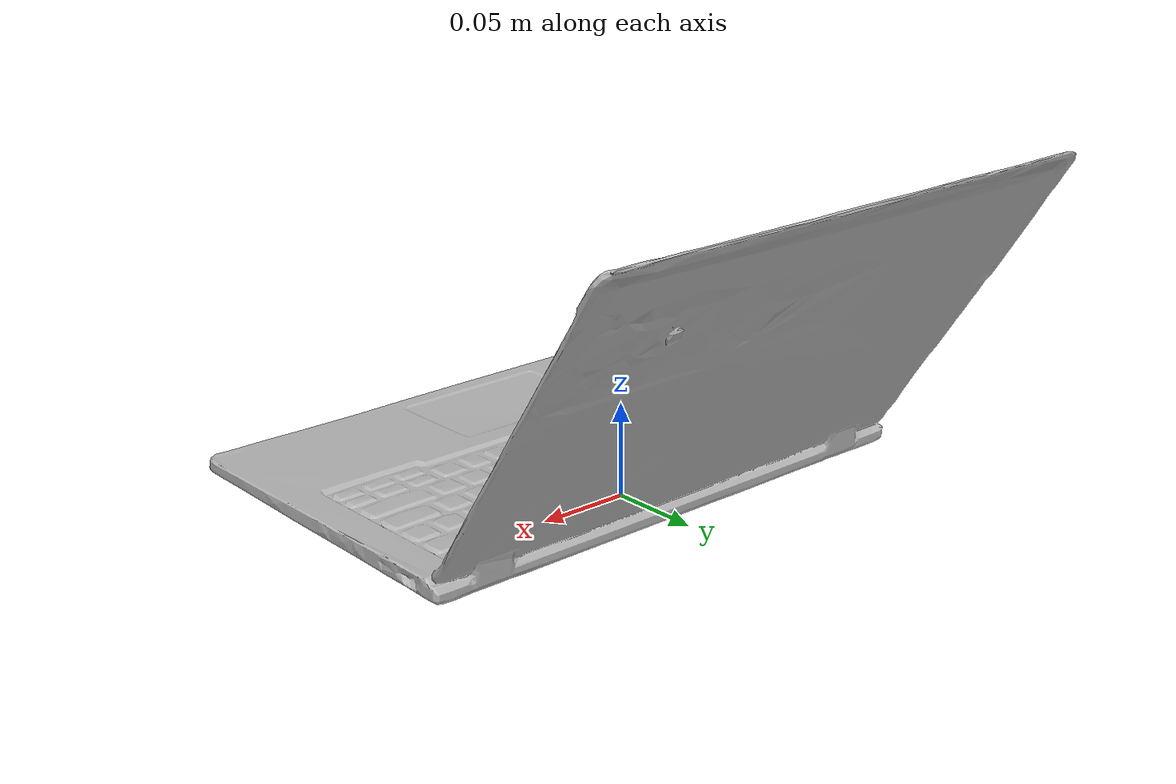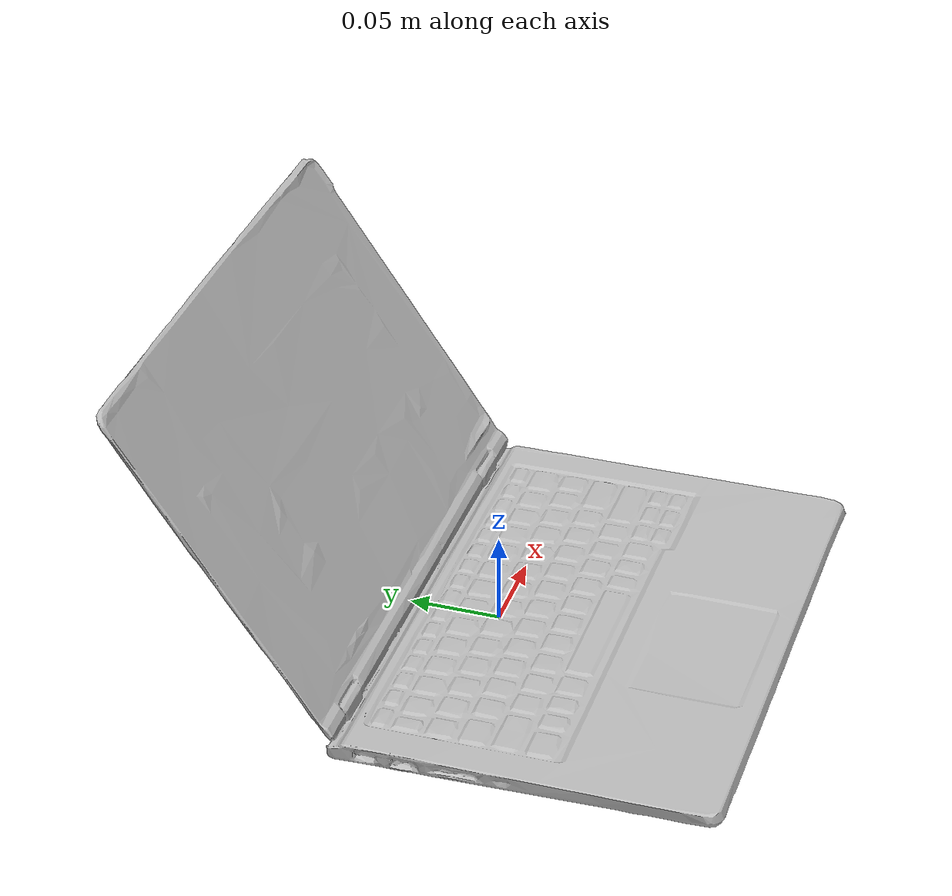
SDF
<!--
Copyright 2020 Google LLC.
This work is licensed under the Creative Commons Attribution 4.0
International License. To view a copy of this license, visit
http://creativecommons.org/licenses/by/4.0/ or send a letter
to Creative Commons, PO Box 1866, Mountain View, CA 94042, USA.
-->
<?xml version="1.0" ?>
<sdf version="1.6">
  <model name="ACE_Coffee_Mug_Kristen_16_oz_cup">
    <static>true</static>
    <link name="link_0">
      <visual name="visual">
        <geometry>
          <mesh>
            <uri>meshes/model.obj</uri>
          </mesh>
        </geometry>
      </visual>
      <collision name="collision_0">
        <geometry>
          <mesh>
            <uri>meshes/model.obj</uri>
          </mesh>
        </geometry>
      </collision>
    </link>
  </model>
</sdf>
